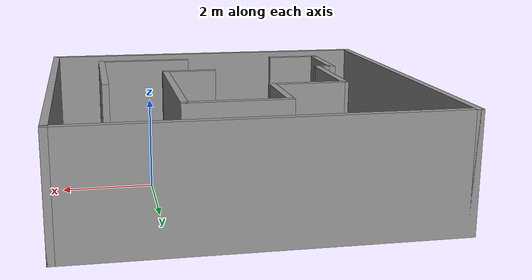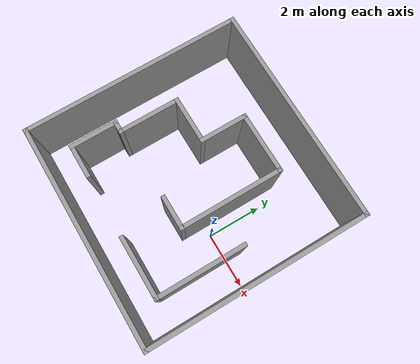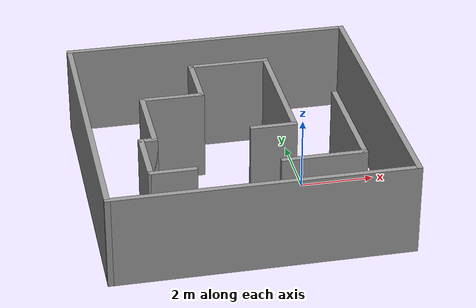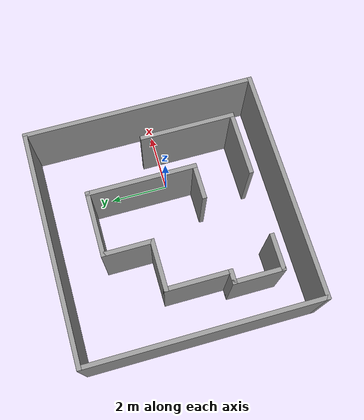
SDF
<sdf version='1.6'>
  <world name='default'>
    <light name='sun' type='directional'>
      <cast_shadows>1</cast_shadows>
      <pose frame=''>0 0 10 0 -0 0</pose>
      <diffuse>0.8 0.8 0.8 1</diffuse>
      <specular>0.2 0.2 0.2 1</specular>
      <attenuation>
        <range>1000</range>
        <constant>0.9</constant>
        <linear>0.01</linear>
        <quadratic>0.001</quadratic>
      </attenuation>
      <direction>-0.5 0.1 -0.9</direction>
    </light>
    <model name='test2'>
    <pose frame=''>-1.80645 0.337927 0 0 -0 0</pose>
    <link name='Wall_75'>
      <collision name='Wall_75_Collision'>
        <geometry>
          <box>
            <size>8 0.15 2.5</size>
          </box>
        </geometry>
        <pose frame=''>0 0 1.25 0 -0 0</pose>
      </collision>
      <visual name='Wall_75_Visual'>
        <pose frame=''>0 0 1.25 0 -0 0</pose>
        <geometry>
          <box>
            <size>8 0.15 2.5</size>
          </box>
        </geometry>
        <material>
          <script>
            <uri>file://media/materials/scripts/gazebo.material</uri>
            <name>Gazebo/Grey</name>
          </script>
          <ambient>1 1 1 1</ambient>
        </material>
      </visual>
      <pose frame=''>0 3.925 0 0 -0 0</pose>
    </link>
    <link name='Wall_76'>
      <collision name='Wall_76_Collision'>
        <geometry>
          <box>
            <size>8 0.15 2.5</size>
          </box>
        </geometry>
        <pose frame=''>0 0 1.25 0 -0 0</pose>
      </collision>
      <visual name='Wall_76_Visual'>
        <pose frame=''>0 0 1.25 0 -0 0</pose>
        <geometry>
          <box>
            <size>8 0.15 2.5</size>
          </box>
        </geometry>
        <material>
          <script>
            <uri>file://media/materials/scripts/gazebo.material</uri>
            <name>Gazebo/Grey</name>
          </script>
          <ambient>1 1 1 1</ambient>
        </material>
      </visual>
      <pose frame=''>3.925 0 0 0 0 -1.5708</pose>
    </link>
    <link name='Wall_77'>
      <collision name='Wall_77_Collision'>
        <geometry>
          <box>
            <size>8 0.15 2.5</size>
          </box>
        </geometry>
        <pose frame=''>0 0 1.25 0 -0 0</pose>
      </collision>
      <visual name='Wall_77_Visual'>
        <pose frame=''>0 0 1.25 0 -0 0</pose>
        <geometry>
          <box>
            <size>8 0.15 2.5</size>
          </box>
        </geometry>
        <material>
          <script>
            <uri>file://media/materials/scripts/gazebo.material</uri>
            <name>Gazebo/Grey</name>
          </script>
          <ambient>1 1 1 1</ambient>
        </material>
      </visual>
      <pose frame=''>0 -3.925 0 0 -0 3.14159</pose>
    </link>
    <link name='Wall_78'>
      <collision name='Wall_78_Collision'>
        <geometry>
          <box>
            <size>8 0.15 2.5</size>
          </box>
        </geometry>
        <pose frame=''>0 0 1.25 0 -0 0</pose>
      </collision>
      <visual name='Wall_78_Visual'>
        <pose frame=''>0 0 1.25 0 -0 0</pose>
        <geometry>
          <box>
            <size>8 0.15 2.5</size>
          </box>
        </geometry>
        <material>
          <script>
            <uri>file://media/materials/scripts/gazebo.material</uri>
            <name>Gazebo/Grey</name>
          </script>
          <ambient>1 1 1 1</ambient>
        </material>
      </visual>
      <pose frame=''>-3.925 0 0 0 -0 1.5708</pose>
    </link>
    <link name='Wall_80'>
      <collision name='Wall_80_Collision'>
        <geometry>
          <box>
            <size>1.25 0.15 2.5</size>
          </box>
        </geometry>
        <pose frame=''>0 0 1.25 0 -0 0</pose>
      </collision>
      <visual name='Wall_80_Visual'>
        <pose frame=''>0 0 1.25 0 -0 0</pose>
        <geometry>
          <box>
            <size>1.25 0.15 2.5</size>
          </box>
        </geometry>
        <material>
          <script>
            <uri>file://media/materials/scripts/gazebo.material</uri>
            <name>Gazebo/Grey</name>
          </script>
          <ambient>1 1 1 1</ambient>
        </material>
      </visual>
      <pose frame=''>-2.14121 -2.901 0 0 -0 3.14159</pose>
    </link>
    <link name='Wall_81'>
      <collision name='Wall_81_Collision'>
        <geometry>
          <box>
            <size>1.75 0.15 2.5</size>
          </box>
        </geometry>
        <pose frame=''>0 0 1.25 0 -0 0</pose>
      </collision>
      <visual name='Wall_81_Visual'>
        <pose frame=''>0 0 1.25 0 -0 0</pose>
        <geometry>
          <box>
            <size>1.75 0.15 2.5</size>
          </box>
        </geometry>
        <material>
          <script>
            <uri>file://media/materials/scripts/gazebo.material</uri>
            <name>Gazebo/Grey</name>
          </script>
          <ambient>1 1 1 1</ambient>
        </material>
      </visual>
      <pose frame=''>-2.69122 -2.101 0 0 -0 1.5708</pose>
    </link>
    <link name='Wall_82'>
      <collision name='Wall_82_Collision'>
        <geometry>
          <box>
            <size>0.5 0.15 2.5</size>
          </box>
        </geometry>
        <pose frame=''>0 0 1.25 0 -0 0</pose>
      </collision>
      <visual name='Wall_82_Visual'>
        <pose frame=''>0 0 1.25 0 -0 0</pose>
        <geometry>
          <box>
            <size>0.5 0.15 2.5</size>
          </box>
        </geometry>
        <material>
          <script>
            <uri>file://media/materials/scripts/gazebo.material</uri>
            <name>Gazebo/Grey</name>
          </script>
          <ambient>1 1 1 1</ambient>
        </material>
      </visual>
      <pose frame=''>-2.51621 -1.301 0 0 -0 0</pose>
    </link>
    <link name='Wall_83'>
      <collision name='Wall_83_Collision'>
        <geometry>
          <box>
            <size>2.25 0.15 2.5</size>
          </box>
        </geometry>
        <pose frame=''>0 0 1.25 0 -0 0</pose>
      </collision>
      <visual name='Wall_83_Visual'>
        <pose frame=''>0 0 1.25 0 -0 0</pose>
        <geometry>
          <box>
            <size>2.25 0.15 2.5</size>
          </box>
        </geometry>
        <material>
          <script>
            <uri>file://media/materials/scripts/gazebo.material</uri>
            <name>Gazebo/Grey</name>
          </script>
          <ambient>1 1 1 1</ambient>
        </material>
      </visual>
      <pose frame=''>-2.34122 -0.251001 0 0 -0 1.5708</pose>
    </link>
    <link name='Wall_84'>
      <collision name='Wall_84_Collision'>
        <geometry>
          <box>
            <size>1.75 0.15 2.5</size>
          </box>
        </geometry>
        <pose frame=''>0 0 1.25 0 -0 0</pose>
      </collision>
      <visual name='Wall_84_Visual'>
        <pose frame=''>0 0 1.25 0 -0 0</pose>
        <geometry>
          <box>
            <size>1.75 0.15 2.5</size>
          </box>
        </geometry>
        <material>
          <script>
            <uri>file://media/materials/scripts/gazebo.material</uri>
            <name>Gazebo/Grey</name>
          </script>
          <ambient>1 1 1 1</ambient>
        </material>
      </visual>
      <pose frame=''>-1.54121 0.798999 0 0 -0 0</pose>
    </link>
    <link name='Wall_85'>
      <collision name='Wall_85_Collision'>
        <geometry>
          <box>
            <size>1.75 0.15 2.5</size>
          </box>
        </geometry>
        <pose frame=''>0 0 1.25 0 -0 0</pose>
      </collision>
      <visual name='Wall_85_Visual'>
        <pose frame=''>0 0 1.25 0 -0 0</pose>
        <geometry>
          <box>
            <size>1.75 0.15 2.5</size>
          </box>
        </geometry>
        <material>
          <script>
            <uri>file://media/materials/scripts/gazebo.material</uri>
            <name>Gazebo/Grey</name>
          </script>
          <ambient>1 1 1 1</ambient>
        </material>
      </visual>
      <pose frame=''>-0.741215 1.599 0 0 -0 1.5708</pose>
    </link>
    <link name='Wall_86'>
      <collision name='Wall_86_Collision'>
        <geometry>
          <box>
            <size>2.25 0.15 2.5</size>
          </box>
        </geometry>
        <pose frame=''>0 0 1.25 0 -0 0</pose>
      </collision>
      <visual name='Wall_86_Visual'>
        <pose frame=''>0 0 1.25 0 -0 0</pose>
        <geometry>
          <box>
            <size>2.25 0.15 2.5</size>
          </box>
        </geometry>
        <material>
          <script>
            <uri>file://media/materials/scripts/gazebo.material</uri>
            <name>Gazebo/Grey</name>
          </script>
          <ambient>1 1 1 1</ambient>
        </material>
      </visual>
      <pose frame=''>0.308785 2.399 0 0 -0 0</pose>
    </link>
    <link name='Wall_87'>
      <collision name='Wall_87_Collision'>
        <geometry>
          <box>
            <size>3.75 0.15 2.5</size>
          </box>
        </geometry>
        <pose frame=''>0 0 1.25 0 -0 0</pose>
      </collision>
      <visual name='Wall_87_Visual'>
        <pose frame=''>0 0 1.25 0 -0 0</pose>
        <geometry>
          <box>
            <size>3.75 0.15 2.5</size>
          </box>
        </geometry>
        <material>
          <script>
            <uri>file://media/materials/scripts/gazebo.material</uri>
            <name>Gazebo/Grey</name>
          </script>
          <ambient>1 1 1 1</ambient>
        </material>
      </visual>
      <pose frame=''>1.35878 0.598999 0 0 0 -1.5708</pose>
    </link>
    <link name='Wall_88'>
      <collision name='Wall_88_Collision'>
        <geometry>
          <box>
            <size>1.25 0.15 2.5</size>
          </box>
        </geometry>
        <pose frame=''>0 0 1.25 0 -0 0</pose>
      </collision>
      <visual name='Wall_88_Visual'>
        <pose frame=''>0 0 1.25 0 -0 0</pose>
        <geometry>
          <box>
            <size>1.25 0.15 2.5</size>
          </box>
        </geometry>
        <material>
          <script>
            <uri>file://media/materials/scripts/gazebo.material</uri>
            <name>Gazebo/Grey</name>
          </script>
          <ambient>1 1 1 1</ambient>
        </material>
      </visual>
      <pose frame=''>0.808785 -1.201 0 0 -0 3.14159</pose>
    </link>
    <link name='Wall_90'>
      <collision name='Wall_90_Collision'>
        <geometry>
          <box>
            <size>3.25 0.15 2.5</size>
          </box>
        </geometry>
        <pose frame=''>0 0 1.25 0 -0 0</pose>
      </collision>
      <visual name='Wall_90_Visual'>
        <pose frame=''>0 0 1.25 0 -0 0</pose>
        <geometry>
          <box>
            <size>3.25 0.15 2.5</size>
          </box>
        </geometry>
        <material>
          <script>
            <uri>file://media/materials/scripts/gazebo.material</uri>
            <name>Gazebo/Grey</name>
          </script>
          <ambient>1 1 1 1</ambient>
        </material>
      </visual>
      <pose frame=''>2.79296 -1.37275 0 0 0 -1.5708</pose>
    </link>
    <link name='Wall_91'>
      <collision name='Wall_91_Collision'>
        <geometry>
          <box>
            <size>2.25 0.15 2.5</size>
          </box>
        </geometry>
        <pose frame=''>0 0 1.25 0 -0 0</pose>
      </collision>
      <visual name='Wall_91_Visual'>
        <pose frame=''>0 0 1.25 0 -0 0</pose>
        <geometry>
          <box>
            <size>2.25 0.15 2.5</size>
          </box>
        </geometry>
        <material>
          <script>
            <uri>file://media/materials/scripts/gazebo.material</uri>
            <name>Gazebo/Grey</name>
          </script>
          <ambient>1 1 1 1</ambient>
        </material>
      </visual>
      <pose frame=''>1.74296 -2.92275 0 0 -0 3.14159</pose>
    </link>
    <static>1</static>
  </model>
  </world>
</sdf>
